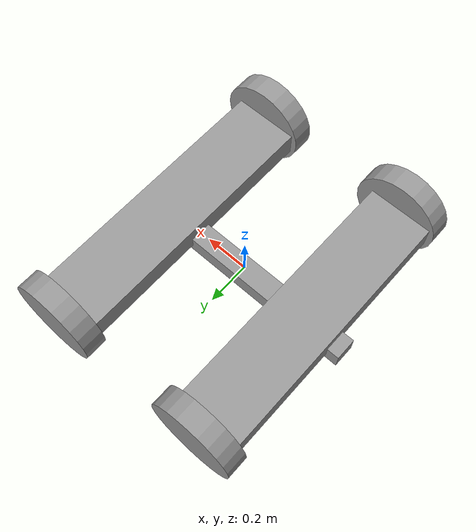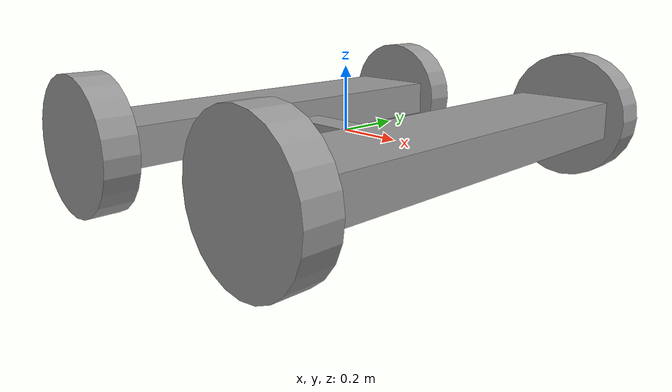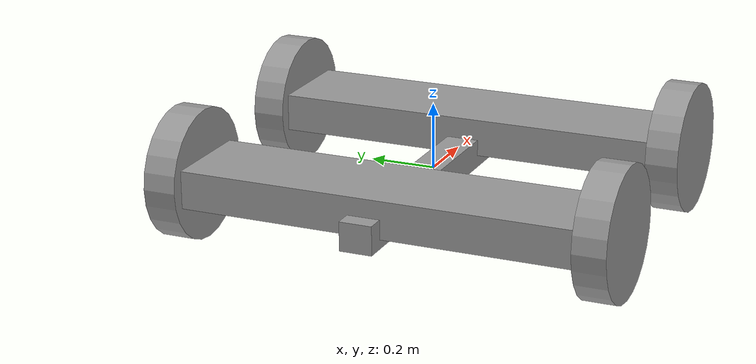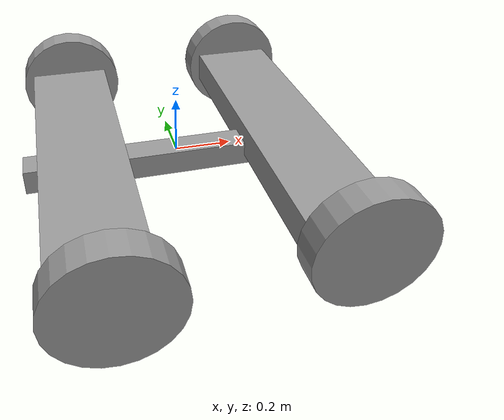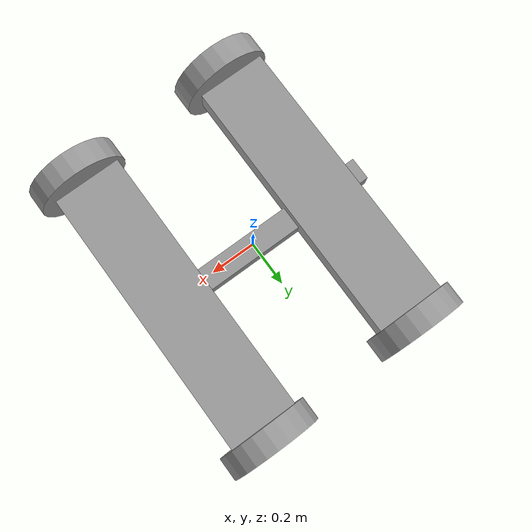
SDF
<?xml version='1.0'?>
<sdf version='1.6'>
  <model name='mymodel2'>
    <link name='link_0'>
      <pose frame=''>-0.075479 0.005541 -0.031466 0 -0 0</pose>
      <inertial>
        <mass>0.00830209</mass>
        <inertia>
          <ixx>1.23003e-05</ixx>
          <ixy>0</ixy>
          <ixz>0</ixz>
          <iyy>0.000617797</iyy>
          <iyz>0</iyz>
          <izz>0.000619282</izz>
        </inertia>
        <pose frame=''>0 0 0 0 -0 0</pose>
      </inertial>
      <visual name='visual'>
        <pose frame=''>0 0 0 0 -0 0</pose>
        <geometry>
          <box>
            <size>0.940829 0.099815 0.088409</size>
          </box>
        </geometry>
        <material>
          <lighting>1</lighting>
          <script>
            <uri>file://media/materials/scripts/gazebo.material</uri>
            <name>Gazebo/Grey</name>
          </script>
          <shader type='pixel'/>
          <ambient>0.3 0.3 0.3 1</ambient>
          <diffuse>0.7 0.7 0.7 1</diffuse>
          <specular>0.01 0.01 0.01 1</specular>
          <emissive>0 0 0 1</emissive>
        </material>
        <transparency>0</transparency>
        <cast_shadows>1</cast_shadows>
      </visual>
      <collision name='collision'>
        <laser_retro>0</laser_retro>
        <max_contacts>10</max_contacts>
        <pose frame=''>0 0 0 0 -0 0</pose>
        <geometry>
          <box>
            <size>0.940829 0.099815 0.088409</size>
          </box>
        </geometry>
        <surface>
          <friction>
            <ode>
              <mu>1</mu>
              <mu2>1</mu2>
              <fdir1>0 0 0</fdir1>
              <slip1>0</slip1>
              <slip2>0</slip2>
            </ode>
            <torsional>
              <coefficient>1</coefficient>
              <patch_radius>0</patch_radius>
              <surface_radius>0</surface_radius>
              <use_patch_radius>1</use_patch_radius>
              <ode>
                <slip>0</slip>
              </ode>
            </torsional>
          </friction>
          <bounce>
            <restitution_coefficient>0</restitution_coefficient>
            <threshold>1e+06</threshold>
          </bounce>
          <contact>
            <collide_without_contact>0</collide_without_contact>
            <collide_without_contact_bitmask>1</collide_without_contact_bitmask>
            <collide_bitmask>1</collide_bitmask>
            <ode>
              <soft_cfm>0</soft_cfm>
              <soft_erp>0.2</soft_erp>
              <kp>1e+13</kp>
              <kd>1</kd>
              <max_vel>0.01</max_vel>
              <min_depth>0</min_depth>
            </ode>
            <bullet>
              <split_impulse>1</split_impulse>
              <split_impulse_penetration_threshold>-0.01</split_impulse_penetration_threshold>
              <soft_cfm>0</soft_cfm>
              <soft_erp>0.2</soft_erp>
              <kp>1e+13</kp>
              <kd>1</kd>
            </bullet>
          </contact>
        </surface>
      </collision>
    </link>
    <model name='mymodel'>
      <link name='link_4'>
        <pose frame=''>-0.009624 0.001941 9.2e-05 1.5707 -0 0</pose>
        <inertial>
          <mass>1.4043</mass>
          <inertia>
            <ixx>0.175759</ixx>
            <ixy>0</ixy>
            <ixz>0</ixz>
            <iyy>0.184741</iyy>
            <iyz>0</iyz>
            <izz>0.0120827</izz>
          </inertia>
          <pose frame=''>0 0 0 0 -0 0</pose>
        </inertial>
        <gravity>1</gravity>
        <self_collide>0</self_collide>
        <kinematic>0</kinematic>
        <visual name='visual'>
          <pose frame=''>0 0 0 0 -0 0</pose>
          <geometry>
            <box>
              <size>0.3 0.115104 1.2201</size>
            </box>
          </geometry>
          <material>
            <lighting>1</lighting>
            <script>
              <uri>file://media/materials/scripts/gazebo.material</uri>
              <name>Gazebo/Grey</name>
            </script>
            <shader type='pixel'>
              <normal_map>__default__</normal_map>
            </shader>
            <ambient>0.3 0.3 0.3 1</ambient>
            <diffuse>0.7 0.7 0.7 1</diffuse>
            <specular>0.01 0.01 0.01 1</specular>
            <emissive>0 0 0 1</emissive>
          </material>
          <transparency>0</transparency>
          <cast_shadows>1</cast_shadows>
        </visual>
        <collision name='collision'>
          <laser_retro>0</laser_retro>
          <max_contacts>10</max_contacts>
          <pose frame=''>0 0 0 0 -0 0</pose>
          <geometry>
            <box>
              <size>0.3 0.115104 1.2201</size>
            </box>
          </geometry>
          <surface>
            <friction>
              <ode>
                <mu>1</mu>
                <mu2>1</mu2>
                <fdir1>0 0 0</fdir1>
                <slip1>0</slip1>
                <slip2>0</slip2>
              </ode>
              <torsional>
                <coefficient>1</coefficient>
                <patch_radius>0</patch_radius>
                <surface_radius>0</surface_radius>
                <use_patch_radius>1</use_patch_radius>
                <ode>
                  <slip>0</slip>
                </ode>
              </torsional>
            </friction>
            <bounce>
              <restitution_coefficient>0</restitution_coefficient>
              <threshold>1e+06</threshold>
            </bounce>
            <contact>
              <collide_without_contact>0</collide_without_contact>
              <collide_without_contact_bitmask>1</collide_without_contact_bitmask>
              <collide_bitmask>1</collide_bitmask>
              <ode>
                <soft_cfm>0</soft_cfm>
                <soft_erp>0.2</soft_erp>
                <kp>1e+13</kp>
                <kd>1</kd>
                <max_vel>0.01</max_vel>
                <min_depth>0</min_depth>
              </ode>
              <bullet>
                <split_impulse>1</split_impulse>
                <split_impulse_penetration_threshold>-0.01</split_impulse_penetration_threshold>
                <soft_cfm>0</soft_cfm>
                <soft_erp>0.2</soft_erp>
                <kp>1e+13</kp>
                <kd>1</kd>
              </bullet>
            </contact>
          </surface>
        </collision>
      </link>
      <link name='link_5'>
        <pose frame=''>-0.001705 0.651439 -0.000167 1.5707 -0 0</pose>
        <inertial>
          <mass>1</mass>
          <inertia>
            <ixx>0.145833</ixx>
            <ixy>0</ixy>
            <ixz>0</ixz>
            <iyy>0.145833</iyy>
            <iyz>0</iyz>
            <izz>0.125</izz>
          </inertia>
          <pose frame=''>0 0 0 0 -0 0</pose>
        </inertial>
        <gravity>1</gravity>
        <self_collide>0</self_collide>
        <kinematic>0</kinematic>
        <visual name='visual'>
          <pose frame=''>0 0 0 0 -0 0</pose>
          <geometry>
            <cylinder>
              <radius>0.2</radius>
              <length>0.1</length>
            </cylinder>
          </geometry>
          <material>
            <lighting>1</lighting>
            <script>
              <uri>file://media/materials/scripts/gazebo.material</uri>
              <name>Gazebo/Grey</name>
            </script>
            <shader type='pixel'>
              <normal_map>__default__</normal_map>
            </shader>
            <ambient>0.3 0.3 0.3 1</ambient>
            <diffuse>0.7 0.7 0.7 1</diffuse>
            <specular>0.01 0.01 0.01 1</specular>
            <emissive>0 0 0 1</emissive>
          </material>
          <transparency>0</transparency>
          <cast_shadows>1</cast_shadows>
        </visual>
        <collision name='collision'>
          <laser_retro>0</laser_retro>
          <max_contacts>10</max_contacts>
          <pose frame=''>0 0 0 0 -0 0</pose>
          <geometry>
            <cylinder>
              <radius>0.2</radius>
              <length>0.1</length>
            </cylinder>
          </geometry>
          <surface>
            <friction>
              <ode>
                <mu>1</mu>
                <mu2>1</mu2>
                <fdir1>0 0 0</fdir1>
                <slip1>0</slip1>
                <slip2>0</slip2>
              </ode>
              <torsional>
                <coefficient>1</coefficient>
                <patch_radius>0</patch_radius>
                <surface_radius>0</surface_radius>
                <use_patch_radius>1</use_patch_radius>
                <ode>
                  <slip>0</slip>
                </ode>
              </torsional>
            </friction>
            <bounce>
              <restitution_coefficient>0</restitution_coefficient>
              <threshold>1e+06</threshold>
            </bounce>
            <contact>
              <collide_without_contact>0</collide_without_contact>
              <collide_without_contact_bitmask>1</collide_without_contact_bitmask>
              <collide_bitmask>1</collide_bitmask>
              <ode>
                <soft_cfm>0</soft_cfm>
                <soft_erp>0.2</soft_erp>
                <kp>1e+13</kp>
                <kd>1</kd>
                <max_vel>0.01</max_vel>
                <min_depth>0</min_depth>
              </ode>
              <bullet>
                <split_impulse>1</split_impulse>
                <split_impulse_penetration_threshold>-0.01</split_impulse_penetration_threshold>
                <soft_cfm>0</soft_cfm>
                <soft_erp>0.2</soft_erp>
                <kp>1e+13</kp>
                <kd>1</kd>
              </bullet>
            </contact>
          </surface>
        </collision>
      </link>
      <link name='link_5_clone'>
        <pose frame=''>0.011331 -0.653385 7.4e-05 1.5707 -0 0</pose>
        <inertial>
          <mass>1</mass>
          <inertia>
            <ixx>0.145833</ixx>
            <ixy>0</ixy>
            <ixz>0</ixz>
            <iyy>0.145833</iyy>
            <iyz>0</iyz>
            <izz>0.125</izz>
          </inertia>
          <pose frame=''>0 0 0 0 -0 0</pose>
        </inertial>
        <self_collide>0</self_collide>
        <kinematic>0</kinematic>
        <visual name='visual'>
          <pose frame=''>0 0 0 0 -0 0</pose>
          <geometry>
            <cylinder>
              <radius>0.2</radius>
              <length>0.1</length>
            </cylinder>
          </geometry>
          <material>
            <lighting>1</lighting>
            <script>
              <uri>file://media/materials/scripts/gazebo.material</uri>
              <name>Gazebo/Grey</name>
            </script>
            <shader type='pixel'>
              <normal_map>__default__</normal_map>
            </shader>
            <ambient>0.3 0.3 0.3 1</ambient>
            <diffuse>0.7 0.7 0.7 1</diffuse>
            <specular>0.01 0.01 0.01 1</specular>
            <emissive>0 0 0 1</emissive>
          </material>
          <transparency>0</transparency>
          <cast_shadows>1</cast_shadows>
        </visual>
        <collision name='collision'>
          <laser_retro>0</laser_retro>
          <max_contacts>10</max_contacts>
          <pose frame=''>0 0 0 0 -0 0</pose>
          <geometry>
            <cylinder>
              <radius>0.2</radius>
              <length>0.1</length>
            </cylinder>
          </geometry>
          <surface>
            <friction>
              <ode>
                <mu>1</mu>
                <mu2>1</mu2>
                <fdir1>0 0 0</fdir1>
                <slip1>0</slip1>
                <slip2>0</slip2>
              </ode>
              <torsional>
                <coefficient>1</coefficient>
                <patch_radius>0</patch_radius>
                <surface_radius>0</surface_radius>
                <use_patch_radius>1</use_patch_radius>
                <ode>
                  <slip>0</slip>
                </ode>
              </torsional>
            </friction>
            <bounce>
              <restitution_coefficient>0</restitution_coefficient>
              <threshold>1e+06</threshold>
            </bounce>
            <contact>
              <collide_without_contact>0</collide_without_contact>
              <collide_without_contact_bitmask>1</collide_without_contact_bitmask>
              <collide_bitmask>1</collide_bitmask>
              <ode>
                <soft_cfm>0</soft_cfm>
                <soft_erp>0.2</soft_erp>
                <kp>1e+13</kp>
                <kd>1</kd>
                <max_vel>0.01</max_vel>
                <min_depth>0</min_depth>
              </ode>
              <bullet>
                <split_impulse>1</split_impulse>
                <split_impulse_penetration_threshold>-0.01</split_impulse_penetration_threshold>
                <soft_cfm>0</soft_cfm>
                <soft_erp>0.2</soft_erp>
                <kp>1e+13</kp>
                <kd>1</kd>
              </bullet>
            </contact>
          </surface>
        </collision>
      </link>
      <joint name='link_4_JOINT_10' type='revolute'>
        <parent>link_4</parent>
        <child>link_5_clone</child>
        <pose frame=''>0 0 0 0 -0 0</pose>
        <axis>
          <xyz>0 0 1</xyz>
          <use_parent_model_frame>0</use_parent_model_frame>
          <limit>
            <lower>-1.79769e+308</lower>
            <upper>1.79769e+308</upper>
            <effort>-1</effort>
            <velocity>-1</velocity>
          </limit>
          <dynamics>
            <spring_reference>0</spring_reference>
            <spring_stiffness>0</spring_stiffness>
            <damping>0</damping>
            <friction>0</friction>
          </dynamics>
        </axis>
        <physics>
          <ode>
            <limit>
              <cfm>0</cfm>
              <erp>0.2</erp>
            </limit>
            <suspension>
              <cfm>0</cfm>
              <erp>0.2</erp>
            </suspension>
          </ode>
        </physics>
      </joint>
      <joint name='link_4_JOINT_9' type='revolute'>
        <parent>link_4</parent>
        <child>link_5</child>
        <pose frame=''>0 0 0 0 -0 0</pose>
        <axis>
          <xyz>0 0 1</xyz>
          <use_parent_model_frame>1</use_parent_model_frame>
          <limit>
            <lower>-1.79769e+308</lower>
            <upper>1.79769e+308</upper>
            <effort>-1</effort>
            <velocity>-1</velocity>
          </limit>
          <dynamics>
            <spring_reference>0</spring_reference>
            <spring_stiffness>0</spring_stiffness>
            <damping>0</damping>
            <friction>0</friction>
          </dynamics>
        </axis>
        <physics>
          <ode>
            <limit>
              <cfm>0</cfm>
              <erp>0.2</erp>
            </limit>
            <suspension>
              <cfm>0</cfm>
              <erp>0.2</erp>
            </suspension>
          </ode>
        </physics>
      </joint>
      <static>0</static>
      <allow_auto_disable>1</allow_auto_disable>
      <pose frame=''>-0.330801 -0.014617 0.010863 0 -0 0</pose>
    </model>
    <model name='mymodel_0'>
      <link name='link_4'>
        <pose frame=''>-0.009624 0.001941 9.2e-05 1.5707 -0 0</pose>
        <inertial>
          <mass>1.4043</mass>
          <inertia>
            <ixx>0.175759</ixx>
            <ixy>0</ixy>
            <ixz>0</ixz>
            <iyy>0.184741</iyy>
            <iyz>0</iyz>
            <izz>0.0120827</izz>
          </inertia>
          <pose frame=''>0 0 0 0 -0 0</pose>
        </inertial>
        <gravity>1</gravity>
        <self_collide>0</self_collide>
        <kinematic>0</kinematic>
        <visual name='visual'>
          <pose frame=''>0 0 0 0 -0 0</pose>
          <geometry>
            <box>
              <size>0.3 0.115104 1.2201</size>
            </box>
          </geometry>
          <material>
            <lighting>1</lighting>
            <script>
              <uri>file://media/materials/scripts/gazebo.material</uri>
              <name>Gazebo/Grey</name>
            </script>
            <shader type='pixel'>
              <normal_map>__default__</normal_map>
            </shader>
            <ambient>0.3 0.3 0.3 1</ambient>
            <diffuse>0.7 0.7 0.7 1</diffuse>
            <specular>0.01 0.01 0.01 1</specular>
            <emissive>0 0 0 1</emissive>
          </material>
          <transparency>0</transparency>
          <cast_shadows>1</cast_shadows>
        </visual>
        <collision name='collision'>
          <laser_retro>0</laser_retro>
          <max_contacts>10</max_contacts>
          <pose frame=''>0 0 0 0 -0 0</pose>
          <geometry>
            <box>
              <size>0.3 0.115104 1.2201</size>
            </box>
          </geometry>
          <surface>
            <friction>
              <ode>
                <mu>1</mu>
                <mu2>1</mu2>
                <fdir1>0 0 0</fdir1>
                <slip1>0</slip1>
                <slip2>0</slip2>
              </ode>
              <torsional>
                <coefficient>1</coefficient>
                <patch_radius>0</patch_radius>
                <surface_radius>0</surface_radius>
                <use_patch_radius>1</use_patch_radius>
                <ode>
                  <slip>0</slip>
                </ode>
              </torsional>
            </friction>
            <bounce>
              <restitution_coefficient>0</restitution_coefficient>
              <threshold>1e+06</threshold>
            </bounce>
            <contact>
              <collide_without_contact>0</collide_without_contact>
              <collide_without_contact_bitmask>1</collide_without_contact_bitmask>
              <collide_bitmask>1</collide_bitmask>
              <ode>
                <soft_cfm>0</soft_cfm>
                <soft_erp>0.2</soft_erp>
                <kp>1e+13</kp>
                <kd>1</kd>
                <max_vel>0.01</max_vel>
                <min_depth>0</min_depth>
              </ode>
              <bullet>
                <split_impulse>1</split_impulse>
                <split_impulse_penetration_threshold>-0.01</split_impulse_penetration_threshold>
                <soft_cfm>0</soft_cfm>
                <soft_erp>0.2</soft_erp>
                <kp>1e+13</kp>
                <kd>1</kd>
              </bullet>
            </contact>
          </surface>
        </collision>
      </link>
      <link name='link_5'>
        <pose frame=''>-0.001705 0.651439 -0.000167 1.5707 -0 0</pose>
        <inertial>
          <mass>1</mass>
          <inertia>
            <ixx>0.145833</ixx>
            <ixy>0</ixy>
            <ixz>0</ixz>
            <iyy>0.145833</iyy>
            <iyz>0</iyz>
            <izz>0.125</izz>
          </inertia>
          <pose frame=''>0 0 0 0 -0 0</pose>
        </inertial>
        <gravity>1</gravity>
        <self_collide>0</self_collide>
        <kinematic>0</kinematic>
        <visual name='visual'>
          <pose frame=''>0 0 0 0 -0 0</pose>
          <geometry>
            <cylinder>
              <radius>0.2</radius>
              <length>0.1</length>
            </cylinder>
          </geometry>
          <material>
            <lighting>1</lighting>
            <script>
              <uri>file://media/materials/scripts/gazebo.material</uri>
              <name>Gazebo/Grey</name>
            </script>
            <shader type='pixel'>
              <normal_map>__default__</normal_map>
            </shader>
            <ambient>0.3 0.3 0.3 1</ambient>
            <diffuse>0.7 0.7 0.7 1</diffuse>
            <specular>0.01 0.01 0.01 1</specular>
            <emissive>0 0 0 1</emissive>
          </material>
          <transparency>0</transparency>
          <cast_shadows>1</cast_shadows>
        </visual>
        <collision name='collision'>
          <laser_retro>0</laser_retro>
          <max_contacts>10</max_contacts>
          <pose frame=''>0 0 0 0 -0 0</pose>
          <geometry>
            <cylinder>
              <radius>0.2</radius>
              <length>0.1</length>
            </cylinder>
          </geometry>
          <surface>
            <friction>
              <ode>
                <mu>1</mu>
                <mu2>1</mu2>
                <fdir1>0 0 0</fdir1>
                <slip1>0</slip1>
                <slip2>0</slip2>
              </ode>
              <torsional>
                <coefficient>1</coefficient>
                <patch_radius>0</patch_radius>
                <surface_radius>0</surface_radius>
                <use_patch_radius>1</use_patch_radius>
                <ode>
                  <slip>0</slip>
                </ode>
              </torsional>
            </friction>
            <bounce>
              <restitution_coefficient>0</restitution_coefficient>
              <threshold>1e+06</threshold>
            </bounce>
            <contact>
              <collide_without_contact>0</collide_without_contact>
              <collide_without_contact_bitmask>1</collide_without_contact_bitmask>
              <collide_bitmask>1</collide_bitmask>
              <ode>
                <soft_cfm>0</soft_cfm>
                <soft_erp>0.2</soft_erp>
                <kp>1e+13</kp>
                <kd>1</kd>
                <max_vel>0.01</max_vel>
                <min_depth>0</min_depth>
              </ode>
              <bullet>
                <split_impulse>1</split_impulse>
                <split_impulse_penetration_threshold>-0.01</split_impulse_penetration_threshold>
                <soft_cfm>0</soft_cfm>
                <soft_erp>0.2</soft_erp>
                <kp>1e+13</kp>
                <kd>1</kd>
              </bullet>
            </contact>
          </surface>
        </collision>
      </link>
      <link name='link_5_clone'>
        <pose frame=''>0.011331 -0.653385 7.4e-05 1.5707 -0 0</pose>
        <inertial>
          <mass>1</mass>
          <inertia>
            <ixx>0.145833</ixx>
            <ixy>0</ixy>
            <ixz>0</ixz>
            <iyy>0.145833</iyy>
            <iyz>0</iyz>
            <izz>0.125</izz>
          </inertia>
          <pose frame=''>0 0 0 0 -0 0</pose>
        </inertial>
        <self_collide>0</self_collide>
        <kinematic>0</kinematic>
        <visual name='visual'>
          <pose frame=''>0 0 0 0 -0 0</pose>
          <geometry>
            <cylinder>
              <radius>0.2</radius>
              <length>0.1</length>
            </cylinder>
          </geometry>
          <material>
            <lighting>1</lighting>
            <script>
              <uri>file://media/materials/scripts/gazebo.material</uri>
              <name>Gazebo/Grey</name>
            </script>
            <shader type='pixel'>
              <normal_map>__default__</normal_map>
            </shader>
            <ambient>0.3 0.3 0.3 1</ambient>
            <diffuse>0.7 0.7 0.7 1</diffuse>
            <specular>0.01 0.01 0.01 1</specular>
            <emissive>0 0 0 1</emissive>
          </material>
          <transparency>0</transparency>
          <cast_shadows>1</cast_shadows>
        </visual>
        <collision name='collision'>
          <laser_retro>0</laser_retro>
          <max_contacts>10</max_contacts>
          <pose frame=''>0 0 0 0 -0 0</pose>
          <geometry>
            <cylinder>
              <radius>0.2</radius>
              <length>0.1</length>
            </cylinder>
          </geometry>
          <surface>
            <friction>
              <ode>
                <mu>1</mu>
                <mu2>1</mu2>
                <fdir1>0 0 0</fdir1>
                <slip1>0</slip1>
                <slip2>0</slip2>
              </ode>
              <torsional>
                <coefficient>1</coefficient>
                <patch_radius>0</patch_radius>
                <surface_radius>0</surface_radius>
                <use_patch_radius>1</use_patch_radius>
                <ode>
                  <slip>0</slip>
                </ode>
              </torsional>
            </friction>
            <bounce>
              <restitution_coefficient>0</restitution_coefficient>
              <threshold>1e+06</threshold>
            </bounce>
            <contact>
              <collide_without_contact>0</collide_without_contact>
              <collide_without_contact_bitmask>1</collide_without_contact_bitmask>
              <collide_bitmask>1</collide_bitmask>
              <ode>
                <soft_cfm>0</soft_cfm>
                <soft_erp>0.2</soft_erp>
                <kp>1e+13</kp>
                <kd>1</kd>
                <max_vel>0.01</max_vel>
                <min_depth>0</min_depth>
              </ode>
              <bullet>
                <split_impulse>1</split_impulse>
                <split_impulse_penetration_threshold>-0.01</split_impulse_penetration_threshold>
                <soft_cfm>0</soft_cfm>
                <soft_erp>0.2</soft_erp>
                <kp>1e+13</kp>
                <kd>1</kd>
              </bullet>
            </contact>
          </surface>
        </collision>
      </link>
      <joint name='link_4_JOINT_10' type='revolute'>
        <parent>link_4</parent>
        <child>link_5_clone</child>
        <pose frame=''>0 0 0 0 -0 0</pose>
        <axis>
          <xyz>0 0 1</xyz>
          <use_parent_model_frame>0</use_parent_model_frame>
          <limit>
            <lower>-1.79769e+308</lower>
            <upper>1.79769e+308</upper>
            <effort>-1</effort>
            <velocity>-1</velocity>
          </limit>
          <dynamics>
            <spring_reference>0</spring_reference>
            <spring_stiffness>0</spring_stiffness>
            <damping>0</damping>
            <friction>0</friction>
          </dynamics>
        </axis>
        <physics>
          <ode>
            <limit>
              <cfm>0</cfm>
              <erp>0.2</erp>
            </limit>
            <suspension>
              <cfm>0</cfm>
              <erp>0.2</erp>
            </suspension>
          </ode>
        </physics>
      </joint>
      <joint name='link_4_JOINT_9' type='revolute'>
        <parent>link_4</parent>
        <child>link_5</child>
        <pose frame=''>0 0 0 0 -0 0</pose>
        <axis>
          <xyz>0 0 1</xyz>
          <use_parent_model_frame>1</use_parent_model_frame>
          <limit>
            <lower>-1.79769e+308</lower>
            <upper>1.79769e+308</upper>
            <effort>-1</effort>
            <velocity>-1</velocity>
          </limit>
          <dynamics>
            <spring_reference>0</spring_reference>
            <spring_stiffness>0</spring_stiffness>
            <damping>0</damping>
            <friction>0</friction>
          </dynamics>
        </axis>
        <physics>
          <ode>
            <limit>
              <cfm>0</cfm>
              <erp>0.2</erp>
            </limit>
            <suspension>
              <cfm>0</cfm>
              <erp>0.2</erp>
            </suspension>
          </ode>
        </physics>
      </joint>
      <static>0</static>
      <allow_auto_disable>1</allow_auto_disable>
      <pose frame=''>0.406275 0.00908 0.020604 0 -0 0</pose>
    </model>
    <joint name='link_4_JOINT_0' type='fixed'>
      <parent>mymodel::link_5_clone</parent>
      <child>link_0</child>
      <pose frame=''>0 0 0 0 -0 0</pose>
      <physics>
        <ode>
          <limit>
            <cfm>0</cfm>
            <erp>0.2</erp>
          </limit>
          <suspension>
            <cfm>0</cfm>
            <erp>0.2</erp>
          </suspension>
        </ode>
      </physics>
    </joint>
    <joint name='link_4_JOINT_1' type='fixed'>
      <parent>mymodel_0::link_4</parent>
      <child>link_0</child>
      <pose frame=''>0 0 0 0 -0 0</pose>
      <physics>
        <ode>
          <limit>
            <cfm>0</cfm>
            <erp>0.2</erp>
          </limit>
          <suspension>
            <cfm>0</cfm>
            <erp>0.2</erp>
          </suspension>
        </ode>
      </physics>
    </joint>
    <static>0</static>
    <allow_auto_disable>1</allow_auto_disable>
  </model>
</sdf>
